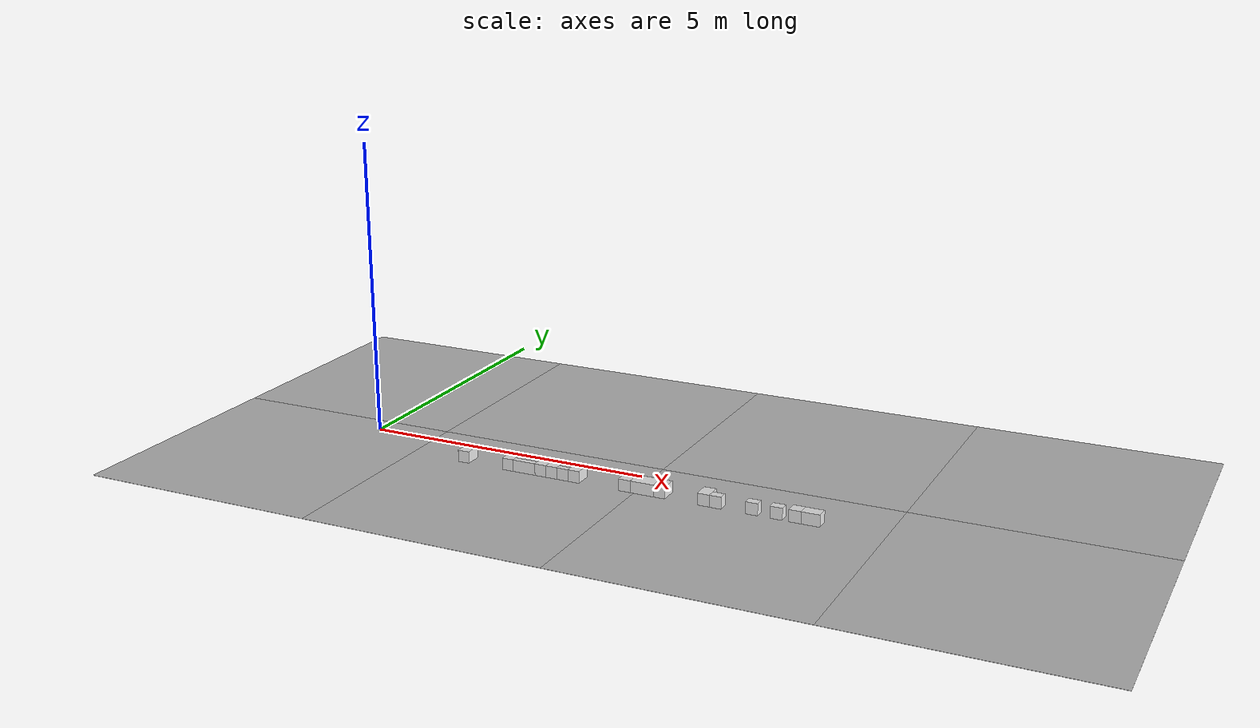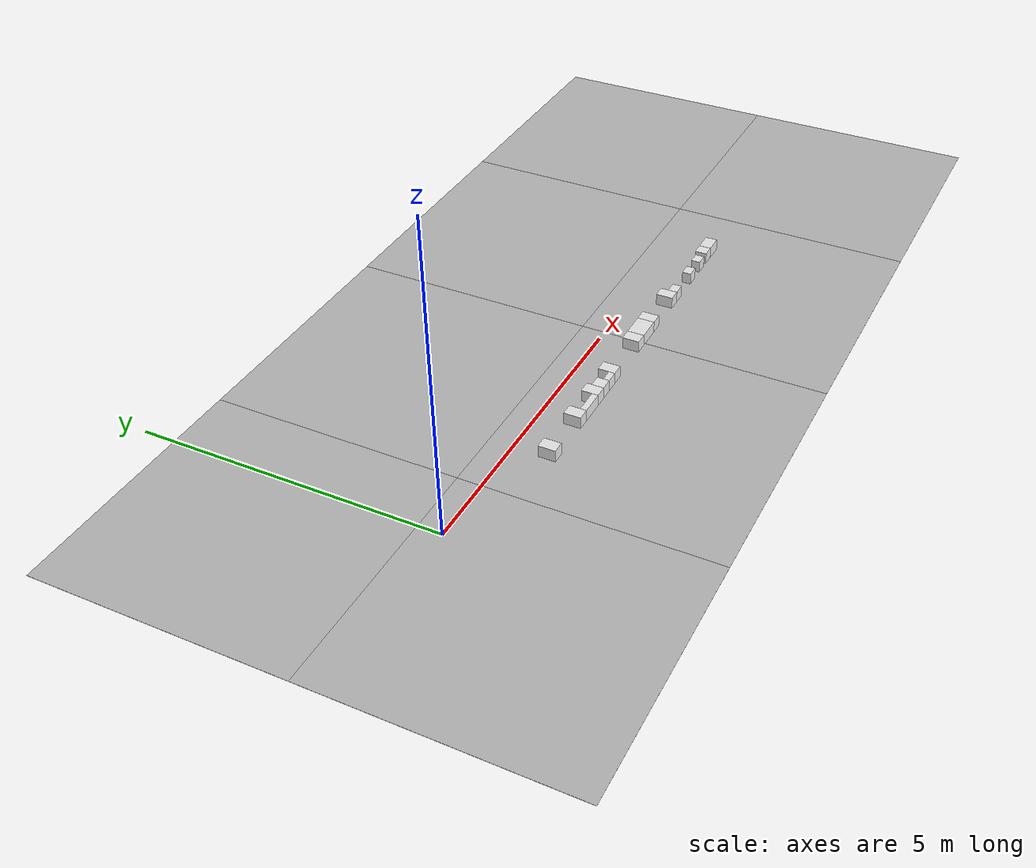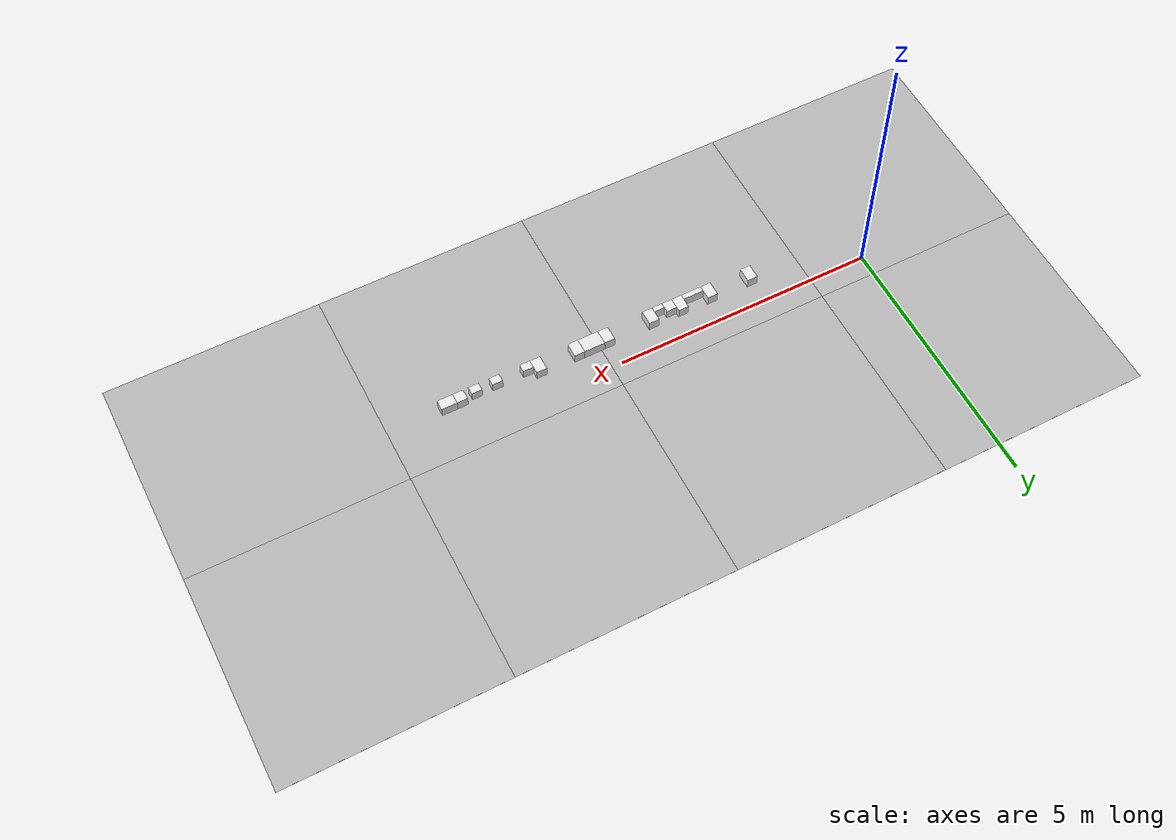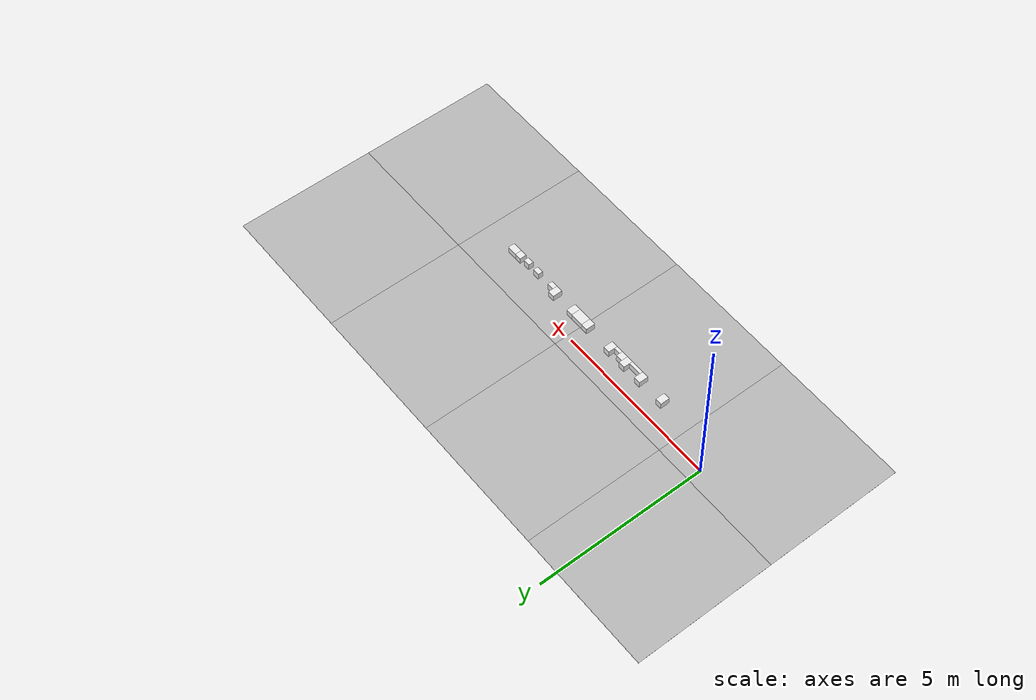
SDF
<sdf version='1.6'><world name='default'>
    <light name='sun_light' type='directional'>
      <pose frame=''>0 0 10 0 -0 0</pose>
      <diffuse>0.5 0.5 0.5 1</diffuse>
      <specular>0.1 0.1 0.1 1</specular>
      <direction>0.1 0.1 -0.9</direction>
      <attenuation>
        <range>20</range>
        <constant>0.5</constant>
        <linear>0.01</linear>
        <quadratic>0.001</quadratic>
      </attenuation>
      <cast_shadows>1</cast_shadows>
    </light>

    <model name='Tile/0-0'>
      <static>1</static>
      <link name='link'>
        <collision name='collision'>
          <geometry>
            <plane>
              <normal>0 0 1</normal>
              <size>4.096 4.096</size>
            </plane>
          </geometry>
          <surface>
            <friction>
              <ode>
                <mu>100</mu>
                <mu2>50</mu2>
              </ode>
              <torsional>
                <ode/>
              </torsional>
            </friction>
            <contact>
              <ode/>
            </contact>
            <bounce/>
          </surface>
          <max_contacts>10</max_contacts>
        </collision>
        <visual name='visual'>
          <cast_shadows>0</cast_shadows>
          <geometry>
            <plane>
              <normal>0 0 1</normal>
              <size>4.096 4.096</size>
            </plane>
          </geometry>
          <material>
            <script>
              <uri>file://materials/scripts</uri>
              <uri>file://materials/textures</uri>
              <name>Tile/aa44efc093d15b0d016b671cb8dad8b9b5925cd42bc6b331ef31decf4ba6863e</name>
            </script>
          </material>
        </visual>
        <self_collide>0</self_collide>
        <enable_wind>0</enable_wind>
        <kinematic>0</kinematic>
      </link>
      <pose frame=''>-0.952 -1.6520000000000001 0 0 -0 0</pose>
    </model>

    <model name='Tile/0-1'>
      <static>1</static>
      <link name='link'>
        <collision name='collision'>
          <geometry>
            <plane>
              <normal>0 0 1</normal>
              <size>4.096 4.096</size>
            </plane>
          </geometry>
          <surface>
            <friction>
              <ode>
                <mu>100</mu>
                <mu2>50</mu2>
              </ode>
              <torsional>
                <ode/>
              </torsional>
            </friction>
            <contact>
              <ode/>
            </contact>
            <bounce/>
          </surface>
          <max_contacts>10</max_contacts>
        </collision>
        <visual name='visual'>
          <cast_shadows>0</cast_shadows>
          <geometry>
            <plane>
              <normal>0 0 1</normal>
              <size>4.096 4.096</size>
            </plane>
          </geometry>
          <material>
            <script>
              <uri>file://materials/scripts</uri>
              <uri>file://materials/textures</uri>
              <name>Tile/6681b896b1587d54cb69aadeb5fb7247b4d6d500490292053e67105ac88ca889</name>
            </script>
          </material>
        </visual>
        <self_collide>0</self_collide>
        <enable_wind>0</enable_wind>
        <kinematic>0</kinematic>
      </link>
      <pose frame=''>-0.952 2.444 0 0 -0 0</pose>
    </model>

    <model name='Tile/1-0'>
      <static>1</static>
      <link name='link'>
        <collision name='collision'>
          <geometry>
            <plane>
              <normal>0 0 1</normal>
              <size>4.096 4.096</size>
            </plane>
          </geometry>
          <surface>
            <friction>
              <ode>
                <mu>100</mu>
                <mu2>50</mu2>
              </ode>
              <torsional>
                <ode/>
              </torsional>
            </friction>
            <contact>
              <ode/>
            </contact>
            <bounce/>
          </surface>
          <max_contacts>10</max_contacts>
        </collision>
        <visual name='visual'>
          <cast_shadows>0</cast_shadows>
          <geometry>
            <plane>
              <normal>0 0 1</normal>
              <size>4.096 4.096</size>
            </plane>
          </geometry>
          <material>
            <script>
              <uri>file://materials/scripts</uri>
              <uri>file://materials/textures</uri>
              <name>Tile/8876114a4bf1db8c754cd59aca7eadaf599e01fc63056f66a20c51c40a3cef67</name>
            </script>
          </material>
        </visual>
        <self_collide>0</self_collide>
        <enable_wind>0</enable_wind>
        <kinematic>0</kinematic>
      </link>
      <pose frame=''>3.144 -1.6520000000000001 0 0 -0 0</pose>
    </model>

    <model name='Tile/1-1'>
      <static>1</static>
      <link name='link'>
        <collision name='collision'>
          <geometry>
            <plane>
              <normal>0 0 1</normal>
              <size>4.096 4.096</size>
            </plane>
          </geometry>
          <surface>
            <friction>
              <ode>
                <mu>100</mu>
                <mu2>50</mu2>
              </ode>
              <torsional>
                <ode/>
              </torsional>
            </friction>
            <contact>
              <ode/>
            </contact>
            <bounce/>
          </surface>
          <max_contacts>10</max_contacts>
        </collision>
        <visual name='visual'>
          <cast_shadows>0</cast_shadows>
          <geometry>
            <plane>
              <normal>0 0 1</normal>
              <size>4.096 4.096</size>
            </plane>
          </geometry>
          <material>
            <script>
              <uri>file://materials/scripts</uri>
              <uri>file://materials/textures</uri>
              <name>Tile/13957a6de1f2afce18d7f1f64dacc2f21295e26ccf498256b0e1a51002cd5706</name>
            </script>
          </material>
        </visual>
        <self_collide>0</self_collide>
        <enable_wind>0</enable_wind>
        <kinematic>0</kinematic>
      </link>
      <pose frame=''>3.144 2.444 0 0 -0 0</pose>
    </model>

    <model name='Tile/2-0'>
      <static>1</static>
      <link name='link'>
        <collision name='collision'>
          <geometry>
            <plane>
              <normal>0 0 1</normal>
              <size>4.096 4.096</size>
            </plane>
          </geometry>
          <surface>
            <friction>
              <ode>
                <mu>100</mu>
                <mu2>50</mu2>
              </ode>
              <torsional>
                <ode/>
              </torsional>
            </friction>
            <contact>
              <ode/>
            </contact>
            <bounce/>
          </surface>
          <max_contacts>10</max_contacts>
        </collision>
        <visual name='visual'>
          <cast_shadows>0</cast_shadows>
          <geometry>
            <plane>
              <normal>0 0 1</normal>
              <size>4.096 4.096</size>
            </plane>
          </geometry>
          <material>
            <script>
              <uri>file://materials/scripts</uri>
              <uri>file://materials/textures</uri>
              <name>Tile/242486004a4cdffed3877de8fc138bf70928f7ba7bd217c6296c2ab35c1380f9</name>
            </script>
          </material>
        </visual>
        <self_collide>0</self_collide>
        <enable_wind>0</enable_wind>
        <kinematic>0</kinematic>
      </link>
      <pose frame=''>7.24 -1.6520000000000001 0 0 -0 0</pose>
    </model>

    <model name='Tile/2-1'>
      <static>1</static>
      <link name='link'>
        <collision name='collision'>
          <geometry>
            <plane>
              <normal>0 0 1</normal>
              <size>4.096 4.096</size>
            </plane>
          </geometry>
          <surface>
            <friction>
              <ode>
                <mu>100</mu>
                <mu2>50</mu2>
              </ode>
              <torsional>
                <ode/>
              </torsional>
            </friction>
            <contact>
              <ode/>
            </contact>
            <bounce/>
          </surface>
          <max_contacts>10</max_contacts>
        </collision>
        <visual name='visual'>
          <cast_shadows>0</cast_shadows>
          <geometry>
            <plane>
              <normal>0 0 1</normal>
              <size>4.096 4.096</size>
            </plane>
          </geometry>
          <material>
            <script>
              <uri>file://materials/scripts</uri>
              <uri>file://materials/textures</uri>
              <name>Tile/13957a6de1f2afce18d7f1f64dacc2f21295e26ccf498256b0e1a51002cd5706</name>
            </script>
          </material>
        </visual>
        <self_collide>0</self_collide>
        <enable_wind>0</enable_wind>
        <kinematic>0</kinematic>
      </link>
      <pose frame=''>7.24 2.444 0 0 -0 0</pose>
    </model>

    <model name='Tile/3-0'>
      <static>1</static>
      <link name='link'>
        <collision name='collision'>
          <geometry>
            <plane>
              <normal>0 0 1</normal>
              <size>4.096 4.096</size>
            </plane>
          </geometry>
          <surface>
            <friction>
              <ode>
                <mu>100</mu>
                <mu2>50</mu2>
              </ode>
              <torsional>
                <ode/>
              </torsional>
            </friction>
            <contact>
              <ode/>
            </contact>
            <bounce/>
          </surface>
          <max_contacts>10</max_contacts>
        </collision>
        <visual name='visual'>
          <cast_shadows>0</cast_shadows>
          <geometry>
            <plane>
              <normal>0 0 1</normal>
              <size>4.096 4.096</size>
            </plane>
          </geometry>
          <material>
            <script>
              <uri>file://materials/scripts</uri>
              <uri>file://materials/textures</uri>
              <name>Tile/1c23de3078bbeccedcda9b63546cbcf0673bc4ccec6e7212818b876aa7449bbf</name>
            </script>
          </material>
        </visual>
        <self_collide>0</self_collide>
        <enable_wind>0</enable_wind>
        <kinematic>0</kinematic>
      </link>
      <pose frame=''>11.336 -1.6520000000000001 0 0 -0 0</pose>
    </model>

    <model name='Tile/3-1'>
      <static>1</static>
      <link name='link'>
        <collision name='collision'>
          <geometry>
            <plane>
              <normal>0 0 1</normal>
              <size>4.096 4.096</size>
            </plane>
          </geometry>
          <surface>
            <friction>
              <ode>
                <mu>100</mu>
                <mu2>50</mu2>
              </ode>
              <torsional>
                <ode/>
              </torsional>
            </friction>
            <contact>
              <ode/>
            </contact>
            <bounce/>
          </surface>
          <max_contacts>10</max_contacts>
        </collision>
        <visual name='visual'>
          <cast_shadows>0</cast_shadows>
          <geometry>
            <plane>
              <normal>0 0 1</normal>
              <size>4.096 4.096</size>
            </plane>
          </geometry>
          <material>
            <script>
              <uri>file://materials/scripts</uri>
              <uri>file://materials/textures</uri>
              <name>Tile/46fa4afc2b65f052e47a09b160b3bbadb349de1e3e3e6a8a637aace7fd5ac1e2</name>
            </script>
          </material>
        </visual>
        <self_collide>0</self_collide>
        <enable_wind>0</enable_wind>
        <kinematic>0</kinematic>
      </link>
      <pose frame=''>11.336 2.444 0 0 -0 0</pose>
    </model>

    <model name='Obstacle/-5/0'>
      <pose frame=''>2.1 -0.5599999999999999 0.1 0 0 -0.0</pose>
      <link name='link'>
        <inertial>
          <mass>10</mass>
          <inertia>
            <ixx>0.166667</ixx>
            <ixy>0</ixy>
            <ixz>0</ixz>
            <iyy>0.166667</iyy>
            <iyz>0</iyz>
            <izz>0.166667</izz>
          </inertia>
        </inertial>
        <collision name='collision'>
          <geometry>
            <box>
              <size>0.2 0.28 0.2</size>
            </box>
          </geometry>
          <max_contacts>10</max_contacts>
          <surface>
            <contact>
              <ode/>
            </contact>
            <bounce/>
            <friction>
              <torsional>
                <ode/>
              </torsional>
              <ode/>
            </friction>
          </surface>
        </collision>
        <visual name='visual'>
          <geometry>
            <box>
              <size>0.2 0.28 0.2</size>
            </box>
          </geometry>
          <material>
            <script>
              <name>Gazebo/White</name>
              <uri>file://media/materials/scripts/gazebo.material</uri>
            </script>
          </material>
        </visual>
        <self_collide>0</self_collide>
        <enable_wind>0</enable_wind>
        <kinematic>0</kinematic>
      </link>
    </model>

    <model name='Obstacle/-12/0'>
      <pose frame=''>2.93 -0.5599999999999999 0.1 0 0 -0.0</pose>
      <link name='link'>
        <inertial>
          <mass>10</mass>
          <inertia>
            <ixx>0.166667</ixx>
            <ixy>0</ixy>
            <ixz>0</ixz>
            <iyy>0.166667</iyy>
            <iyz>0</iyz>
            <izz>0.166667</izz>
          </inertia>
        </inertial>
        <collision name='collision'>
          <geometry>
            <box>
              <size>0.2 0.28 0.2</size>
            </box>
          </geometry>
          <max_contacts>10</max_contacts>
          <surface>
            <contact>
              <ode/>
            </contact>
            <bounce/>
            <friction>
              <torsional>
                <ode/>
              </torsional>
              <ode/>
            </friction>
          </surface>
        </collision>
        <visual name='visual'>
          <geometry>
            <box>
              <size>0.2 0.28 0.2</size>
            </box>
          </geometry>
          <material>
            <script>
              <name>Gazebo/White</name>
              <uri>file://media/materials/scripts/gazebo.material</uri>
            </script>
          </material>
        </visual>
        <self_collide>0</self_collide>
        <enable_wind>0</enable_wind>
        <kinematic>0</kinematic>
      </link>
    </model>

    <model name='Obstacle/-16/0'>
      <pose frame=''>3.2300000000000004 -0.6499999999999999 0.1 0 0 -0.0</pose>
      <link name='link'>
        <inertial>
          <mass>10</mass>
          <inertia>
            <ixx>0.166667</ixx>
            <ixy>0</ixy>
            <ixz>0</ixz>
            <iyy>0.166667</iyy>
            <iyz>0</iyz>
            <izz>0.166667</izz>
          </inertia>
        </inertial>
        <collision name='collision'>
          <geometry>
            <box>
              <size>0.4 0.1 0.2</size>
            </box>
          </geometry>
          <max_contacts>10</max_contacts>
          <surface>
            <contact>
              <ode/>
            </contact>
            <bounce/>
            <friction>
              <torsional>
                <ode/>
              </torsional>
              <ode/>
            </friction>
          </surface>
        </collision>
        <visual name='visual'>
          <geometry>
            <box>
              <size>0.4 0.1 0.2</size>
            </box>
          </geometry>
          <material>
            <script>
              <name>Gazebo/White</name>
              <uri>file://media/materials/scripts/gazebo.material</uri>
            </script>
          </material>
        </visual>
        <self_collide>0</self_collide>
        <enable_wind>0</enable_wind>
        <kinematic>0</kinematic>
      </link>
    </model>

    <model name='Obstacle/-20/0'>
      <pose frame=''>3.5300000000000002 -0.5599999999999999 0.1 0 0 -0.0</pose>
      <link name='link'>
        <inertial>
          <mass>10</mass>
          <inertia>
            <ixx>0.166667</ixx>
            <ixy>0</ixy>
            <ixz>0</ixz>
            <iyy>0.166667</iyy>
            <iyz>0</iyz>
            <izz>0.166667</izz>
          </inertia>
        </inertial>
        <collision name='collision'>
          <geometry>
            <box>
              <size>0.2 0.28 0.2</size>
            </box>
          </geometry>
          <max_contacts>10</max_contacts>
          <surface>
            <contact>
              <ode/>
            </contact>
            <bounce/>
            <friction>
              <torsional>
                <ode/>
              </torsional>
              <ode/>
            </friction>
          </surface>
        </collision>
        <visual name='visual'>
          <geometry>
            <box>
              <size>0.2 0.28 0.2</size>
            </box>
          </geometry>
          <material>
            <script>
              <name>Gazebo/White</name>
              <uri>file://media/materials/scripts/gazebo.material</uri>
            </script>
          </material>
        </visual>
        <self_collide>0</self_collide>
        <enable_wind>0</enable_wind>
        <kinematic>0</kinematic>
      </link>
    </model>

    <model name='Obstacle/-24/0'>
      <pose frame=''>3.7300000000000004 -0.6 0.1 0 0 -0.0</pose>
      <link name='link'>
        <inertial>
          <mass>10</mass>
          <inertia>
            <ixx>0.166667</ixx>
            <ixy>0</ixy>
            <ixz>0</ixz>
            <iyy>0.166667</iyy>
            <iyz>0</iyz>
            <izz>0.166667</izz>
          </inertia>
        </inertial>
        <collision name='collision'>
          <geometry>
            <box>
              <size>0.2 0.2 0.2</size>
            </box>
          </geometry>
          <max_contacts>10</max_contacts>
          <surface>
            <contact>
              <ode/>
            </contact>
            <bounce/>
            <friction>
              <torsional>
                <ode/>
              </torsional>
              <ode/>
            </friction>
          </surface>
        </collision>
        <visual name='visual'>
          <geometry>
            <box>
              <size>0.2 0.2 0.2</size>
            </box>
          </geometry>
          <material>
            <script>
              <name>Gazebo/White</name>
              <uri>file://media/materials/scripts/gazebo.material</uri>
            </script>
          </material>
        </visual>
        <self_collide>0</self_collide>
        <enable_wind>0</enable_wind>
        <kinematic>0</kinematic>
      </link>
    </model>

    <model name='Obstacle/-28/0'>
      <pose frame=''>3.9300000000000006 -0.6499999999999999 0.1 0 0 -0.0</pose>
      <link name='link'>
        <inertial>
          <mass>10</mass>
          <inertia>
            <ixx>0.166667</ixx>
            <ixy>0</ixy>
            <ixz>0</ixz>
            <iyy>0.166667</iyy>
            <iyz>0</iyz>
            <izz>0.166667</izz>
          </inertia>
        </inertial>
        <collision name='collision'>
          <geometry>
            <box>
              <size>0.2 0.1 0.2</size>
            </box>
          </geometry>
          <max_contacts>10</max_contacts>
          <surface>
            <contact>
              <ode/>
            </contact>
            <bounce/>
            <friction>
              <torsional>
                <ode/>
              </torsional>
              <ode/>
            </friction>
          </surface>
        </collision>
        <visual name='visual'>
          <geometry>
            <box>
              <size>0.2 0.1 0.2</size>
            </box>
          </geometry>
          <material>
            <script>
              <name>Gazebo/White</name>
              <uri>file://media/materials/scripts/gazebo.material</uri>
            </script>
          </material>
        </visual>
        <self_collide>0</self_collide>
        <enable_wind>0</enable_wind>
        <kinematic>0</kinematic>
      </link>
    </model>

    <model name='Obstacle/-32/0'>
      <pose frame=''>4.13 -0.5599999999999999 0.1 0 0 -0.0</pose>
      <link name='link'>
        <inertial>
          <mass>10</mass>
          <inertia>
            <ixx>0.166667</ixx>
            <ixy>0</ixy>
            <ixz>0</ixz>
            <iyy>0.166667</iyy>
            <iyz>0</iyz>
            <izz>0.166667</izz>
          </inertia>
        </inertial>
        <collision name='collision'>
          <geometry>
            <box>
              <size>0.2 0.28 0.2</size>
            </box>
          </geometry>
          <max_contacts>10</max_contacts>
          <surface>
            <contact>
              <ode/>
            </contact>
            <bounce/>
            <friction>
              <torsional>
                <ode/>
              </torsional>
              <ode/>
            </friction>
          </surface>
        </collision>
        <visual name='visual'>
          <geometry>
            <box>
              <size>0.2 0.28 0.2</size>
            </box>
          </geometry>
          <material>
            <script>
              <name>Gazebo/White</name>
              <uri>file://media/materials/scripts/gazebo.material</uri>
            </script>
          </material>
        </visual>
        <self_collide>0</self_collide>
        <enable_wind>0</enable_wind>
        <kinematic>0</kinematic>
      </link>
    </model>

    <model name='Obstacle/-39/0'>
      <pose frame=''>5.03 -0.5599999999999999 0.1 0 0 -0.0</pose>
      <link name='link'>
        <inertial>
          <mass>10</mass>
          <inertia>
            <ixx>0.166667</ixx>
            <ixy>0</ixy>
            <ixz>0</ixz>
            <iyy>0.166667</iyy>
            <iyz>0</iyz>
            <izz>0.166667</izz>
          </inertia>
        </inertial>
        <collision name='collision'>
          <geometry>
            <box>
              <size>0.2 0.28 0.2</size>
            </box>
          </geometry>
          <max_contacts>10</max_contacts>
          <surface>
            <contact>
              <ode/>
            </contact>
            <bounce/>
            <friction>
              <torsional>
                <ode/>
              </torsional>
              <ode/>
            </friction>
          </surface>
        </collision>
        <visual name='visual'>
          <geometry>
            <box>
              <size>0.2 0.28 0.2</size>
            </box>
          </geometry>
          <material>
            <script>
              <name>Gazebo/White</name>
              <uri>file://media/materials/scripts/gazebo.material</uri>
            </script>
          </material>
        </visual>
        <self_collide>0</self_collide>
        <enable_wind>0</enable_wind>
        <kinematic>0</kinematic>
      </link>
    </model>

    <model name='Obstacle/-43/0'>
      <pose frame=''>5.330000000000001 -0.5599999999999999 0.1 0 0 -0.0</pose>
      <link name='link'>
        <inertial>
          <mass>10</mass>
          <inertia>
            <ixx>0.166667</ixx>
            <ixy>0</ixy>
            <ixz>0</ixz>
            <iyy>0.166667</iyy>
            <iyz>0</iyz>
            <izz>0.166667</izz>
          </inertia>
        </inertial>
        <collision name='collision'>
          <geometry>
            <box>
              <size>0.4 0.28 0.2</size>
            </box>
          </geometry>
          <max_contacts>10</max_contacts>
          <surface>
            <contact>
              <ode/>
            </contact>
            <bounce/>
            <friction>
              <torsional>
                <ode/>
              </torsional>
              <ode/>
            </friction>
          </surface>
        </collision>
        <visual name='visual'>
          <geometry>
            <box>
              <size>0.4 0.28 0.2</size>
            </box>
          </geometry>
          <material>
            <script>
              <name>Gazebo/White</name>
              <uri>file://media/materials/scripts/gazebo.material</uri>
            </script>
          </material>
        </visual>
        <self_collide>0</self_collide>
        <enable_wind>0</enable_wind>
        <kinematic>0</kinematic>
      </link>
    </model>

    <model name='Obstacle/-47/0'>
      <pose frame=''>5.630000000000001 -0.5599999999999999 0.1 0 0 -0.0</pose>
      <link name='link'>
        <inertial>
          <mass>10</mass>
          <inertia>
            <ixx>0.166667</ixx>
            <ixy>0</ixy>
            <ixz>0</ixz>
            <iyy>0.166667</iyy>
            <iyz>0</iyz>
            <izz>0.166667</izz>
          </inertia>
        </inertial>
        <collision name='collision'>
          <geometry>
            <box>
              <size>0.2 0.28 0.2</size>
            </box>
          </geometry>
          <max_contacts>10</max_contacts>
          <surface>
            <contact>
              <ode/>
            </contact>
            <bounce/>
            <friction>
              <torsional>
                <ode/>
              </torsional>
              <ode/>
            </friction>
          </surface>
        </collision>
        <visual name='visual'>
          <geometry>
            <box>
              <size>0.2 0.28 0.2</size>
            </box>
          </geometry>
          <material>
            <script>
              <name>Gazebo/White</name>
              <uri>file://media/materials/scripts/gazebo.material</uri>
            </script>
          </material>
        </visual>
        <self_collide>0</self_collide>
        <enable_wind>0</enable_wind>
        <kinematic>0</kinematic>
      </link>
    </model>

    <model name='Obstacle/-54/0'>
      <pose frame=''>6.380000000000001 -0.5599999999999999 0.1 0 0 -0.0</pose>
      <link name='link'>
        <inertial>
          <mass>10</mass>
          <inertia>
            <ixx>0.166667</ixx>
            <ixy>0</ixy>
            <ixz>0</ixz>
            <iyy>0.166667</iyy>
            <iyz>0</iyz>
            <izz>0.166667</izz>
          </inertia>
        </inertial>
        <collision name='collision'>
          <geometry>
            <box>
              <size>0.2 0.28 0.2</size>
            </box>
          </geometry>
          <max_contacts>10</max_contacts>
          <surface>
            <contact>
              <ode/>
            </contact>
            <bounce/>
            <friction>
              <torsional>
                <ode/>
              </torsional>
              <ode/>
            </friction>
          </surface>
        </collision>
        <visual name='visual'>
          <geometry>
            <box>
              <size>0.2 0.28 0.2</size>
            </box>
          </geometry>
          <material>
            <script>
              <name>Gazebo/White</name>
              <uri>file://media/materials/scripts/gazebo.material</uri>
            </script>
          </material>
        </visual>
        <self_collide>0</self_collide>
        <enable_wind>0</enable_wind>
        <kinematic>0</kinematic>
      </link>
    </model>

    <model name='Obstacle/-58/0'>
      <pose frame=''>6.580000000000001 -0.625 0.1 0 0 -0.0</pose>
      <link name='link'>
        <inertial>
          <mass>10</mass>
          <inertia>
            <ixx>0.166667</ixx>
            <ixy>0</ixy>
            <ixz>0</ixz>
            <iyy>0.166667</iyy>
            <iyz>0</iyz>
            <izz>0.166667</izz>
          </inertia>
        </inertial>
        <collision name='collision'>
          <geometry>
            <box>
              <size>0.2 0.15 0.2</size>
            </box>
          </geometry>
          <max_contacts>10</max_contacts>
          <surface>
            <contact>
              <ode/>
            </contact>
            <bounce/>
            <friction>
              <torsional>
                <ode/>
              </torsional>
              <ode/>
            </friction>
          </surface>
        </collision>
        <visual name='visual'>
          <geometry>
            <box>
              <size>0.2 0.15 0.2</size>
            </box>
          </geometry>
          <material>
            <script>
              <name>Gazebo/White</name>
              <uri>file://media/materials/scripts/gazebo.material</uri>
            </script>
          </material>
        </visual>
        <self_collide>0</self_collide>
        <enable_wind>0</enable_wind>
        <kinematic>0</kinematic>
      </link>
    </model>

    <model name='Obstacle/-65/0'>
      <pose frame=''>7.1800000000000015 -0.625 0.1 0 0 -0.0</pose>
      <link name='link'>
        <inertial>
          <mass>10</mass>
          <inertia>
            <ixx>0.166667</ixx>
            <ixy>0</ixy>
            <ixz>0</ixz>
            <iyy>0.166667</iyy>
            <iyz>0</iyz>
            <izz>0.166667</izz>
          </inertia>
        </inertial>
        <collision name='collision'>
          <geometry>
            <box>
              <size>0.2 0.15 0.2</size>
            </box>
          </geometry>
          <max_contacts>10</max_contacts>
          <surface>
            <contact>
              <ode/>
            </contact>
            <bounce/>
            <friction>
              <torsional>
                <ode/>
              </torsional>
              <ode/>
            </friction>
          </surface>
        </collision>
        <visual name='visual'>
          <geometry>
            <box>
              <size>0.2 0.15 0.2</size>
            </box>
          </geometry>
          <material>
            <script>
              <name>Gazebo/White</name>
              <uri>file://media/materials/scripts/gazebo.material</uri>
            </script>
          </material>
        </visual>
        <self_collide>0</self_collide>
        <enable_wind>0</enable_wind>
        <kinematic>0</kinematic>
      </link>
    </model>

    <model name='Obstacle/-72/0'>
      <pose frame=''>7.580000000000002 -0.625 0.1 0 0 -0.0</pose>
      <link name='link'>
        <inertial>
          <mass>10</mass>
          <inertia>
            <ixx>0.166667</ixx>
            <ixy>0</ixy>
            <ixz>0</ixz>
            <iyy>0.166667</iyy>
            <iyz>0</iyz>
            <izz>0.166667</izz>
          </inertia>
        </inertial>
        <collision name='collision'>
          <geometry>
            <box>
              <size>0.2 0.15 0.2</size>
            </box>
          </geometry>
          <max_contacts>10</max_contacts>
          <surface>
            <contact>
              <ode/>
            </contact>
            <bounce/>
            <friction>
              <torsional>
                <ode/>
              </torsional>
              <ode/>
            </friction>
          </surface>
        </collision>
        <visual name='visual'>
          <geometry>
            <box>
              <size>0.2 0.15 0.2</size>
            </box>
          </geometry>
          <material>
            <script>
              <name>Gazebo/White</name>
              <uri>file://media/materials/scripts/gazebo.material</uri>
            </script>
          </material>
        </visual>
        <self_collide>0</self_collide>
        <enable_wind>0</enable_wind>
        <kinematic>0</kinematic>
      </link>
    </model>

    <model name='Obstacle/-79/0'>
      <pose frame=''>7.880000000000002 -0.6 0.1 0 0 -0.0</pose>
      <link name='link'>
        <inertial>
          <mass>10</mass>
          <inertia>
            <ixx>0.166667</ixx>
            <ixy>0</ixy>
            <ixz>0</ixz>
            <iyy>0.166667</iyy>
            <iyz>0</iyz>
            <izz>0.166667</izz>
          </inertia>
        </inertial>
        <collision name='collision'>
          <geometry>
            <box>
              <size>0.2 0.2 0.2</size>
            </box>
          </geometry>
          <max_contacts>10</max_contacts>
          <surface>
            <contact>
              <ode/>
            </contact>
            <bounce/>
            <friction>
              <torsional>
                <ode/>
              </torsional>
              <ode/>
            </friction>
          </surface>
        </collision>
        <visual name='visual'>
          <geometry>
            <box>
              <size>0.2 0.2 0.2</size>
            </box>
          </geometry>
          <material>
            <script>
              <name>Gazebo/White</name>
              <uri>file://media/materials/scripts/gazebo.material</uri>
            </script>
          </material>
        </visual>
        <self_collide>0</self_collide>
        <enable_wind>0</enable_wind>
        <kinematic>0</kinematic>
      </link>
    </model>

    <model name='Obstacle/-83/0'>
      <pose frame=''>8.130000000000003 -0.6 0.1 0 0 -0.0</pose>
      <link name='link'>
        <inertial>
          <mass>10</mass>
          <inertia>
            <ixx>0.166667</ixx>
            <ixy>0</ixy>
            <ixz>0</ixz>
            <iyy>0.166667</iyy>
            <iyz>0</iyz>
            <izz>0.166667</izz>
          </inertia>
        </inertial>
        <collision name='collision'>
          <geometry>
            <box>
              <size>0.3 0.2 0.2</size>
            </box>
          </geometry>
          <max_contacts>10</max_contacts>
          <surface>
            <contact>
              <ode/>
            </contact>
            <bounce/>
            <friction>
              <torsional>
                <ode/>
              </torsional>
              <ode/>
            </friction>
          </surface>
        </collision>
        <visual name='visual'>
          <geometry>
            <box>
              <size>0.3 0.2 0.2</size>
            </box>
          </geometry>
          <material>
            <script>
              <name>Gazebo/White</name>
              <uri>file://media/materials/scripts/gazebo.material</uri>
            </script>
          </material>
        </visual>
        <self_collide>0</self_collide>
        <enable_wind>0</enable_wind>
        <kinematic>0</kinematic>
      </link>
    </model>
    </world></sdf>
